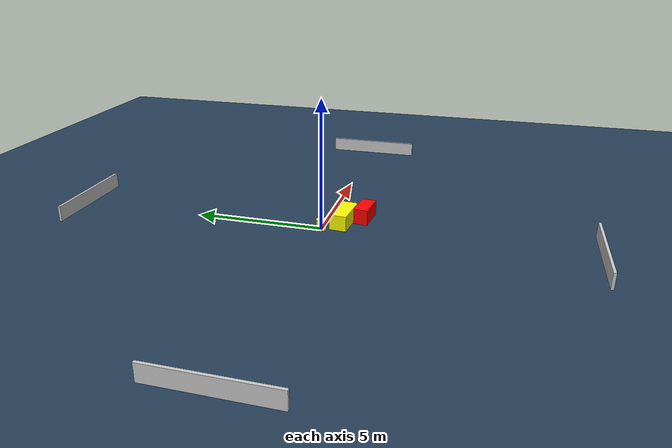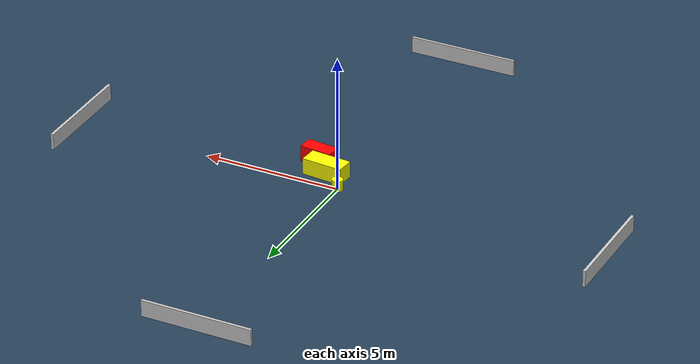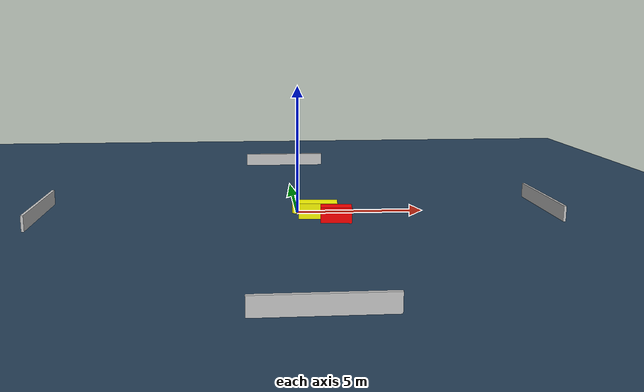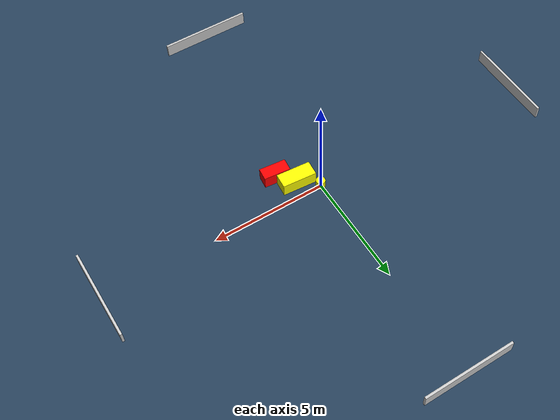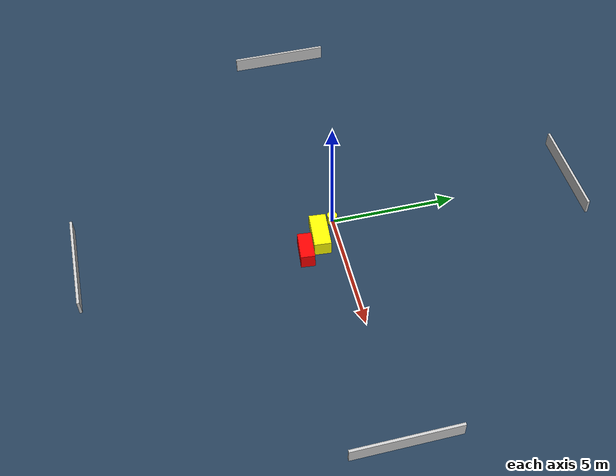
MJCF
<?xml version="1.0" ?>
<mujoco model="generated_environment">
  <option timestep="0.01" integrator="RK4" cone="elliptic"/>
  <default>
    <geom density="1"/>
  </default>
  <asset>
    <texture builtin="gradient" height="3072" name="skybox" rgb1="0.3 0.5 0.7" rgb2="0 0 0" type="skybox" width="512"/>
    <texture builtin="checker" height="300" name="groundplane" rgb1="0.2 0.3 0.4" rgb2="0.1 0.2 0.3" type="2d" width="300"/>
    <material name="groundplane" reflectance="0.2" texrepeat="5 5" texture="groundplane"/>
  </asset>
  <worldbody>
    <light dir="0 0 -1" directional="true" pos="0 0 1.5"/>
    <geom condim="3" friction="0.5 0.005 0.001" material="groundplane" name="floor" pos="0 0 0" size="0 0 0.05" type="plane"/>
    <body name="walls">
      <geom name="wall_1" condim="4" pos="-10.0 0.0 0.3" rgba="0.800000011920929 0.800000011920929 0.800000011920929 1.0" size="0.05 2.0 0.3" type="box"/>
      <geom name="wall_2" condim="4" pos="10.0 0.0 0.3" rgba="0.800000011920929 0.800000011920929 0.800000011920929 1.0" size="0.05 2.0 0.3" type="box"/>
      <geom name="wall_3" condim="4" pos="0.0 -10.0 0.3" rgba="0.800000011920929 0.800000011920929 0.800000011920929 1.0" size="2.0 0.05 0.3" type="box"/>
      <geom name="wall_4" condim="4" pos="0.0 10.0 0.3" rgba="0.800000011920929 0.800000011920929 0.800000011920929 1.0" size="2.0 0.05 0.3" type="box"/>
    </body>
    <body name="robot">
      <joint name="joint_x" type="slide" pos="0 0 0" axis="1 0 0"/>
      <joint name="joint_y" type="slide" pos="0 0 0" axis="0 1 0"/>
      <geom name="robot" type="cylinder" pos="0.0 0.0 0.2" size="0.2 0.2 0.0" mass="5.0" friction="1.0 0.005 0.0001" condim="4" rgba="1.0 1.0 0.0 1.0"/>
    </body>
    <body name="obstacle_1_movable">
      <geom name="obstacle_1_movable" condim="4" pos="0.7580350034474355 -0.678534936459719 0.3" euler="0 0 175.23772078911657" friction="0.0 0.005 0.001" rgba="1.0 1.0 0.0 1.0" size="0.7460267743565234 0.3314283555443246 0.3" type="box" mass="0.1"/>
      <joint type="free"/>
    </body>
    <body name="obstacle_2_static">
      <geom name="obstacle_2_static" condim="4" pos="1.3834857146409472 -1.3787419625524084 0.3" euler="0 0 174.33985863251047" friction="0.0 0.005 0.001" rgba="1.0 0.0 0.0 1.0" size="0.5825523937972974 0.2752866267260971 0.3" type="box"/>
    </body>
  </worldbody>
  <actuator>
    <motor name="actuator_x" joint="joint_x" gear="1" ctrlrange="-1 1"/>
    <motor name="actuator_y" joint="joint_y" gear="1" ctrlrange="-1 1"/>
  </actuator>
</mujoco>
